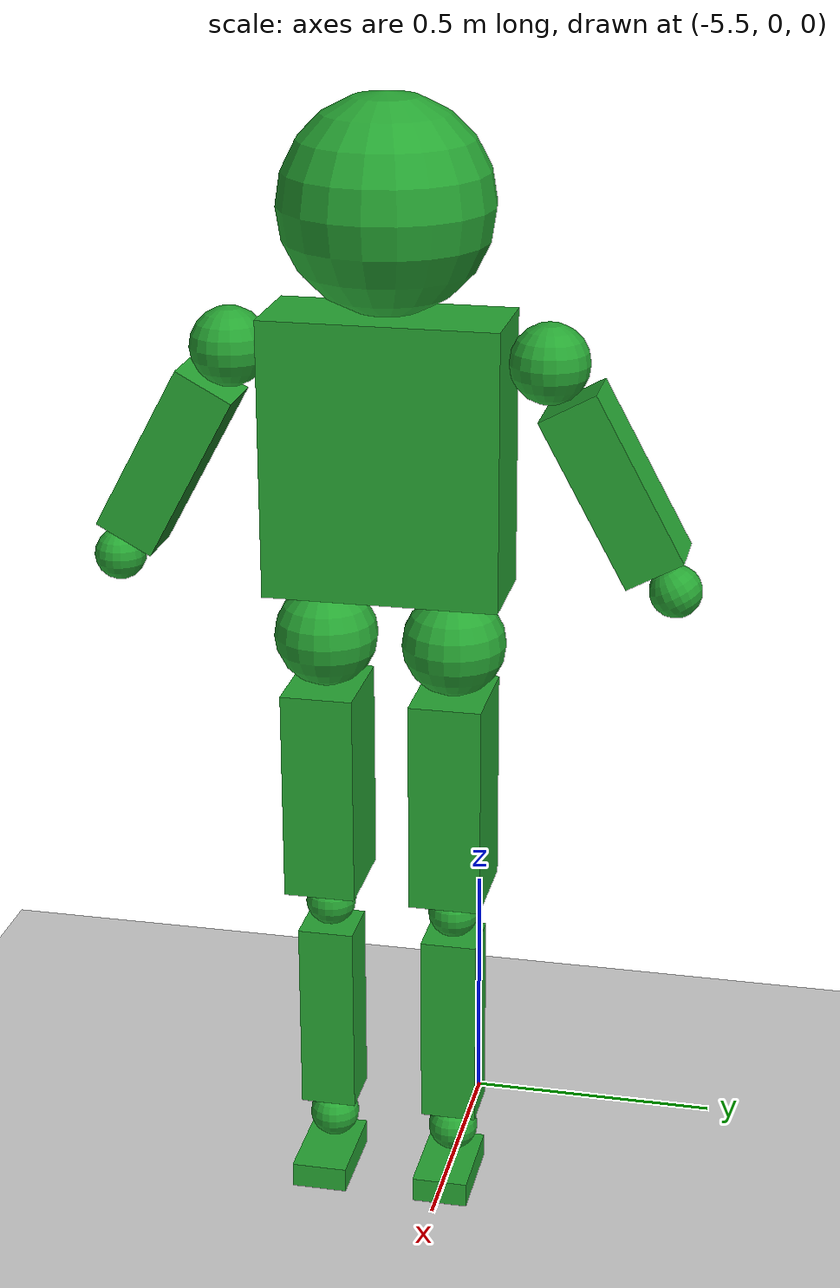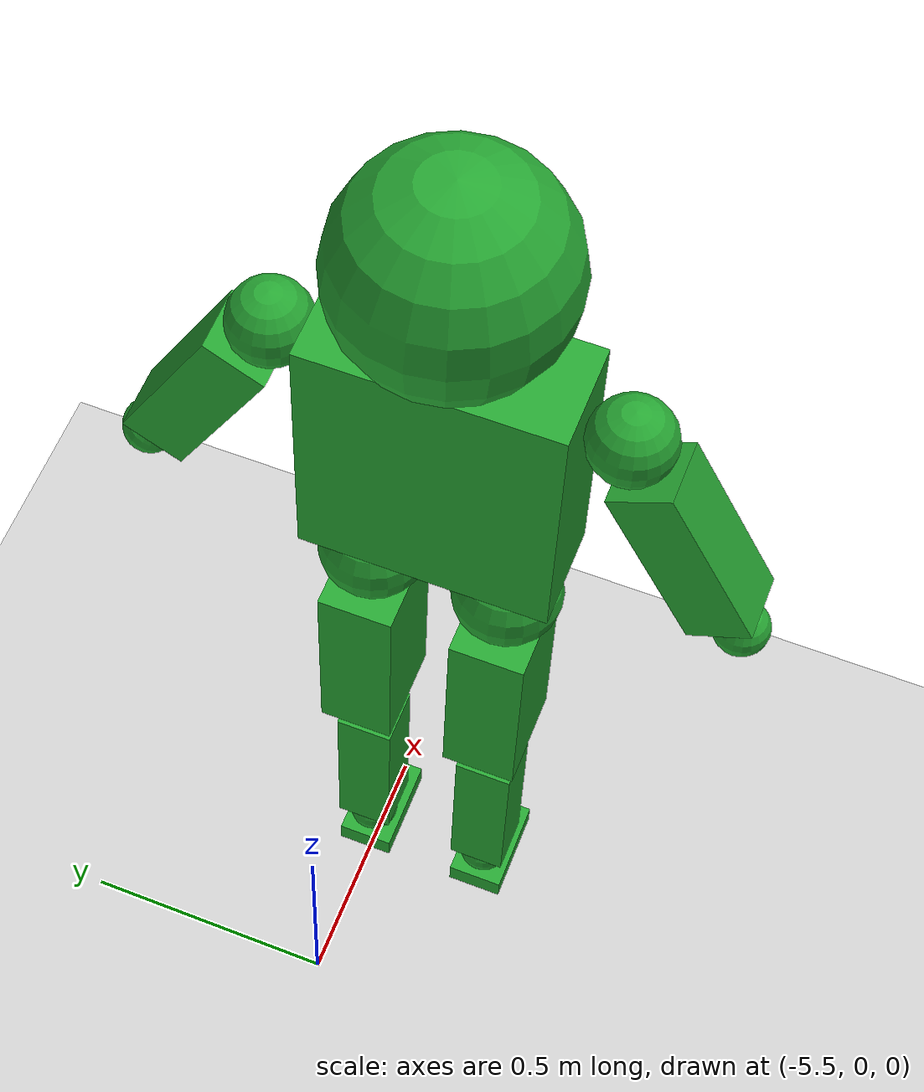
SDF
<sdf version="1.6">
 <world name="Apartment 1023">
  <model name="ground_plane">
   <static>1</static>
   <link name="link">
    <collision name="collision">
     <geometry><plane><normal>0 0 1</normal><size>100 100</size></plane></geometry>
     <surface><friction><ode><mu>100</mu><mu2>50</mu2></ode></friction></surface>
    </collision>
    <visual name="visual">
     <cast_shadows>0</cast_shadows>
     <geometry><plane><normal>0 0 1</normal><size>100 100</size></plane></geometry>
     <material>
      <script><uri>file://media/materials/scripts/gazebo.material</uri><name>Gazebo/Grey</name></script>
     </material>
    </visual>
   </link>
  </model>
  <model name="HumanoidRobot_0">
   <static>1</static>
   <link name="link_Foot_RT">
    <pose>0.98187 -0.173198 -0.379096 0 -0 0</pose>
    <inertial>
     <mass>1</mass>
     <inertia>
      <ixx>0.166667</ixx>
      <ixy>0</ixy>
      <ixz>0</ixz>
      <iyy>0.166667</iyy>
      <iyz>0</iyz>
      <izz>0.166667</izz>
     </inertia>
    </inertial>
    <visual name="visual">
     <geometry><box><size>0.19 0.11 0.05</size></box></geometry>
     <material>
      <lighting>1</lighting>
      <script><uri>file://media/materials/scripts/gazebo.material</uri><name>Gazebo/Green</name></script>
      <emissive>0 0 0 1</emissive>
      <shader type="vertex"><normal_map>__default__</normal_map></shader>
     </material>
    </visual>
    <collision name="collision">
     <geometry><box><size>0.19 0.11 0.05</size></box></geometry>
     <surface>
      <friction>
       <ode><mu>1</mu><mu2>1</mu2><fdir1>0 0 0</fdir1><slip1>0</slip1><slip2>0</slip2></ode>
       <torsional>
        <coefficient>1</coefficient>
        <patch_radius>0</patch_radius>
        <surface_radius>0</surface_radius>
        <use_patch_radius>1</use_patch_radius>
        <ode><slip>0</slip></ode>
       </torsional>
      </friction>
      <bounce><restitution_coefficient>0</restitution_coefficient><threshold>1e+06</threshold></bounce>
      <contact>
       <collide_without_contact>0</collide_without_contact>
       <collide_without_contact_bitmask>1</collide_without_contact_bitmask>
       <collide_bitmask>1</collide_bitmask>
       <ode>
        <soft_cfm>0</soft_cfm>
        <soft_erp>0.2</soft_erp>
        <kp>1e+13</kp>
        <kd>1</kd>
        <max_vel>0.01</max_vel>
        <min_depth>0</min_depth>
       </ode>
       <bullet>
        <split_impulse>1</split_impulse>
        <split_impulse_penetration_threshold>-0.01</split_impulse_penetration_threshold>
        <soft_cfm>0</soft_cfm>
        <soft_erp>0.2</soft_erp>
        <kp>1e+13</kp>
        <kd>1</kd>
       </bullet>
      </contact>
     </surface>
    </collision>
   </link>
   <link name="link_Ankle_RT">
    <pose>0.93687 -0.173198 -0.304096 0 -0 0</pose>
    <inertial>
     <mass>1</mass>
     <inertia><ixx>0.1</ixx><ixy>0</ixy><ixz>0</ixz><iyy>0.1</iyy><iyz>0</iyz><izz>0.1</izz></inertia>
    </inertial>
    <visual name="visual">
     <geometry><sphere><radius>0.05</radius></sphere></geometry>
     <material>
      <lighting>1</lighting>
      <script><uri>file://media/materials/scripts/gazebo.material</uri><name>Gazebo/Green</name></script>
      <emissive>0 0 0 1</emissive>
      <shader type="vertex"><normal_map>__default__</normal_map></shader>
     </material>
    </visual>
    <collision name="collision">
     <geometry><sphere><radius>0.05</radius></sphere></geometry>
     <surface>
      <friction>
       <ode><mu>1</mu><mu2>1</mu2><fdir1>0 0 0</fdir1><slip1>0</slip1><slip2>0</slip2></ode>
       <torsional>
        <coefficient>1</coefficient>
        <patch_radius>0</patch_radius>
        <surface_radius>0</surface_radius>
        <use_patch_radius>1</use_patch_radius>
        <ode><slip>0</slip></ode>
       </torsional>
      </friction>
      <bounce><restitution_coefficient>0</restitution_coefficient><threshold>1e+06</threshold></bounce>
      <contact>
       <collide_without_contact>0</collide_without_contact>
       <collide_without_contact_bitmask>1</collide_without_contact_bitmask>
       <collide_bitmask>1</collide_bitmask>
       <ode>
        <soft_cfm>0</soft_cfm>
        <soft_erp>0.2</soft_erp>
        <kp>1e+13</kp>
        <kd>1</kd>
        <max_vel>0.01</max_vel>
        <min_depth>0</min_depth>
       </ode>
       <bullet>
        <split_impulse>1</split_impulse>
        <split_impulse_penetration_threshold>-0.01</split_impulse_penetration_threshold>
        <soft_cfm>0</soft_cfm>
        <soft_erp>0.2</soft_erp>
        <kp>1e+13</kp>
        <kd>1</kd>
       </bullet>
      </contact>
     </surface>
    </collision>
   </link>
   <link name="link_Ankle_LT">
    <pose>0.939823 0.076802 -0.3041 0 -0 0</pose>
    <inertial>
     <mass>1</mass>
     <inertia><ixx>0.1</ixx><ixy>0</ixy><ixz>0</ixz><iyy>0.1</iyy><iyz>0</iyz><izz>0.1</izz></inertia>
    </inertial>
    <visual name="visual">
     <geometry><sphere><radius>0.05</radius></sphere></geometry>
     <material>
      <lighting>1</lighting>
      <script><uri>file://media/materials/scripts/gazebo.material</uri><name>Gazebo/Green</name></script>
      <emissive>0 0 0 1</emissive>
      <shader type="vertex"><normal_map>__default__</normal_map></shader>
     </material>
    </visual>
    <collision name="collision">
     <geometry><sphere><radius>0.05</radius></sphere></geometry>
     <surface>
      <friction>
       <ode><mu>1</mu><mu2>1</mu2><fdir1>0 0 0</fdir1><slip1>0</slip1><slip2>0</slip2></ode>
       <torsional>
        <coefficient>1</coefficient>
        <patch_radius>0</patch_radius>
        <surface_radius>0</surface_radius>
        <use_patch_radius>1</use_patch_radius>
        <ode><slip>0</slip></ode>
       </torsional>
      </friction>
      <bounce><restitution_coefficient>0</restitution_coefficient><threshold>1e+06</threshold></bounce>
      <contact>
       <collide_without_contact>0</collide_without_contact>
       <collide_without_contact_bitmask>1</collide_without_contact_bitmask>
       <collide_bitmask>1</collide_bitmask>
       <ode>
        <soft_cfm>0</soft_cfm>
        <soft_erp>0.2</soft_erp>
        <kp>1e+13</kp>
        <kd>1</kd>
        <max_vel>0.01</max_vel>
        <min_depth>0</min_depth>
       </ode>
       <bullet>
        <split_impulse>1</split_impulse>
        <split_impulse_penetration_threshold>-0.01</split_impulse_penetration_threshold>
        <soft_cfm>0</soft_cfm>
        <soft_erp>0.2</soft_erp>
        <kp>1e+13</kp>
        <kd>1</kd>
       </bullet>
      </contact>
     </surface>
    </collision>
   </link>
   <link name="link_Arm_RT">
    <pose>0.93687 -0.468195 1.0909 -0.5 0 0</pose>
    <inertial>
     <mass>1</mass>
     <inertia>
      <ixx>0.166667</ixx>
      <ixy>0</ixy>
      <ixz>0</ixz>
      <iyy>0.166667</iyy>
      <iyz>0</iyz>
      <izz>0.166667</izz>
     </inertia>
    </inertial>
    <visual name="visual">
     <geometry><box><size>0.12 0.12 0.35</size></box></geometry>
     <material>
      <lighting>1</lighting>
      <script><uri>file://media/materials/scripts/gazebo.material</uri><name>Gazebo/Green</name></script>
      <emissive>0 0 0 1</emissive>
      <shader type="vertex"><normal_map>__default__</normal_map></shader>
     </material>
    </visual>
    <collision name="collision">
     <geometry><box><size>0.12 0.12 0.35</size></box></geometry>
     <surface>
      <friction>
       <ode><mu>1</mu><mu2>1</mu2><fdir1>0 0 0</fdir1><slip1>0</slip1><slip2>0</slip2></ode>
       <torsional>
        <coefficient>1</coefficient>
        <patch_radius>0</patch_radius>
        <surface_radius>0</surface_radius>
        <use_patch_radius>1</use_patch_radius>
        <ode><slip>0</slip></ode>
       </torsional>
      </friction>
      <bounce><restitution_coefficient>0</restitution_coefficient><threshold>1e+06</threshold></bounce>
      <contact>
       <collide_without_contact>0</collide_without_contact>
       <collide_without_contact_bitmask>1</collide_without_contact_bitmask>
       <collide_bitmask>1</collide_bitmask>
       <ode>
        <soft_cfm>0</soft_cfm>
        <soft_erp>0.2</soft_erp>
        <kp>1e+13</kp>
        <kd>1</kd>
        <max_vel>0.01</max_vel>
        <min_depth>0</min_depth>
       </ode>
       <bullet>
        <split_impulse>1</split_impulse>
        <split_impulse_penetration_threshold>-0.01</split_impulse_penetration_threshold>
        <soft_cfm>0</soft_cfm>
        <soft_erp>0.2</soft_erp>
        <kp>1e+13</kp>
        <kd>1</kd>
       </bullet>
      </contact>
     </surface>
    </collision>
   </link>
   <link name="link_Arm_LT">
    <pose>0.939823 0.376802 1.0909 0.5 -0 0</pose>
    <inertial>
     <mass>1</mass>
     <inertia>
      <ixx>0.166667</ixx>
      <ixy>0</ixy>
      <ixz>0</ixz>
      <iyy>0.166667</iyy>
      <iyz>0</iyz>
      <izz>0.166667</izz>
     </inertia>
    </inertial>
    <visual name="visual">
     <geometry><box><size>0.12 0.12 0.35</size></box></geometry>
     <material>
      <lighting>1</lighting>
      <script><uri>file://media/materials/scripts/gazebo.material</uri><name>Gazebo/Green</name></script>
      <emissive>0 0 0 1</emissive>
      <shader type="vertex"><normal_map>__default__</normal_map></shader>
     </material>
    </visual>
    <collision name="collision">
     <geometry><box><size>0.12 0.12 0.35</size></box></geometry>
     <surface>
      <friction>
       <ode><mu>1</mu><mu2>1</mu2><fdir1>0 0 0</fdir1><slip1>0</slip1><slip2>0</slip2></ode>
       <torsional>
        <coefficient>1</coefficient>
        <patch_radius>0</patch_radius>
        <surface_radius>0</surface_radius>
        <use_patch_radius>1</use_patch_radius>
        <ode><slip>0</slip></ode>
       </torsional>
      </friction>
      <bounce><restitution_coefficient>0</restitution_coefficient><threshold>1e+06</threshold></bounce>
      <contact>
       <collide_without_contact>0</collide_without_contact>
       <collide_without_contact_bitmask>1</collide_without_contact_bitmask>
       <collide_bitmask>1</collide_bitmask>
       <ode>
        <soft_cfm>0</soft_cfm>
        <soft_erp>0.2</soft_erp>
        <kp>1e+13</kp>
        <kd>1</kd>
        <max_vel>0.01</max_vel>
        <min_depth>0</min_depth>
       </ode>
       <bullet>
        <split_impulse>1</split_impulse>
        <split_impulse_penetration_threshold>-0.01</split_impulse_penetration_threshold>
        <soft_cfm>0</soft_cfm>
        <soft_erp>0.2</soft_erp>
        <kp>1e+13</kp>
        <kd>1</kd>
       </bullet>
      </contact>
     </surface>
    </collision>
   </link>
   <link name="link_Calf_RT">
    <pose>0.93687 -0.173198 -0.059096 0 -0 0</pose>
    <inertial>
     <mass>1</mass>
     <inertia>
      <ixx>0.166667</ixx>
      <ixy>0</ixy>
      <ixz>0</ixz>
      <iyy>0.166667</iyy>
      <iyz>0</iyz>
      <izz>0.166667</izz>
     </inertia>
    </inertial>
    <visual name="visual">
     <geometry><box><size>0.11 0.11 0.39</size></box></geometry>
     <material>
      <lighting>1</lighting>
      <script><uri>file://media/materials/scripts/gazebo.material</uri><name>Gazebo/Green</name></script>
      <emissive>0 0 0 1</emissive>
      <shader type="vertex"><normal_map>__default__</normal_map></shader>
     </material>
    </visual>
    <collision name="collision">
     <geometry><box><size>0.11 0.11 0.39</size></box></geometry>
     <surface>
      <friction>
       <ode><mu>1</mu><mu2>1</mu2><fdir1>0 0 0</fdir1><slip1>0</slip1><slip2>0</slip2></ode>
       <torsional>
        <coefficient>1</coefficient>
        <patch_radius>0</patch_radius>
        <surface_radius>0</surface_radius>
        <use_patch_radius>1</use_patch_radius>
        <ode><slip>0</slip></ode>
       </torsional>
      </friction>
      <bounce><restitution_coefficient>0</restitution_coefficient><threshold>1e+06</threshold></bounce>
      <contact>
       <collide_without_contact>0</collide_without_contact>
       <collide_without_contact_bitmask>1</collide_without_contact_bitmask>
       <collide_bitmask>1</collide_bitmask>
       <ode>
        <soft_cfm>0</soft_cfm>
        <soft_erp>0.2</soft_erp>
        <kp>1e+13</kp>
        <kd>1</kd>
        <max_vel>0.01</max_vel>
        <min_depth>0</min_depth>
       </ode>
       <bullet>
        <split_impulse>1</split_impulse>
        <split_impulse_penetration_threshold>-0.01</split_impulse_penetration_threshold>
        <soft_cfm>0</soft_cfm>
        <soft_erp>0.2</soft_erp>
        <kp>1e+13</kp>
        <kd>1</kd>
       </bullet>
      </contact>
     </surface>
    </collision>
   </link>
   <link name="link_Calf_LT">
    <pose>0.939823 0.076802 -0.0591 0 -0 0</pose>
    <inertial>
     <mass>1</mass>
     <inertia>
      <ixx>0.166667</ixx>
      <ixy>0</ixy>
      <ixz>0</ixz>
      <iyy>0.166667</iyy>
      <iyz>0</iyz>
      <izz>0.166667</izz>
     </inertia>
    </inertial>
    <visual name="visual">
     <geometry><box><size>0.11 0.11 0.39</size></box></geometry>
     <material>
      <lighting>1</lighting>
      <script><uri>file://media/materials/scripts/gazebo.material</uri><name>Gazebo/Green</name></script>
      <emissive>0 0 0 1</emissive>
      <shader type="vertex"><normal_map>__default__</normal_map></shader>
     </material>
    </visual>
    <collision name="collision">
     <geometry><box><size>0.11 0.11 0.39</size></box></geometry>
     <surface>
      <friction>
       <ode><mu>1</mu><mu2>1</mu2><fdir1>0 0 0</fdir1><slip1>0</slip1><slip2>0</slip2></ode>
       <torsional>
        <coefficient>1</coefficient>
        <patch_radius>0</patch_radius>
        <surface_radius>0</surface_radius>
        <use_patch_radius>1</use_patch_radius>
        <ode><slip>0</slip></ode>
       </torsional>
      </friction>
      <bounce><restitution_coefficient>0</restitution_coefficient><threshold>1e+06</threshold></bounce>
      <contact>
       <collide_without_contact>0</collide_without_contact>
       <collide_without_contact_bitmask>1</collide_without_contact_bitmask>
       <collide_bitmask>1</collide_bitmask>
       <ode>
        <soft_cfm>0</soft_cfm>
        <soft_erp>0.2</soft_erp>
        <kp>1e+13</kp>
        <kd>1</kd>
        <max_vel>0.01</max_vel>
        <min_depth>0</min_depth>
       </ode>
       <bullet>
        <split_impulse>1</split_impulse>
        <split_impulse_penetration_threshold>-0.01</split_impulse_penetration_threshold>
        <soft_cfm>0</soft_cfm>
        <soft_erp>0.2</soft_erp>
        <kp>1e+13</kp>
        <kd>1</kd>
       </bullet>
      </contact>
     </surface>
    </collision>
   </link>
   <link name="link_Foot_LT">
    <pose>0.984823 0.076802 -0.3791 0 -0 0</pose>
    <inertial>
     <mass>1</mass>
     <inertia>
      <ixx>0.166667</ixx>
      <ixy>0</ixy>
      <ixz>0</ixz>
      <iyy>0.166667</iyy>
      <iyz>0</iyz>
      <izz>0.166667</izz>
     </inertia>
    </inertial>
    <visual name="visual">
     <geometry><box><size>0.19 0.11 0.05</size></box></geometry>
     <material>
      <lighting>1</lighting>
      <script><uri>file://media/materials/scripts/gazebo.material</uri><name>Gazebo/Green</name></script>
      <emissive>0 0 0 1</emissive>
      <shader type="vertex"><normal_map>__default__</normal_map></shader>
     </material>
    </visual>
    <collision name="collision">
     <geometry><box><size>0.19 0.11 0.05</size></box></geometry>
     <surface>
      <friction>
       <ode><mu>1</mu><mu2>1</mu2><fdir1>0 0 0</fdir1><slip1>0</slip1><slip2>0</slip2></ode>
       <torsional>
        <coefficient>1</coefficient>
        <patch_radius>0</patch_radius>
        <surface_radius>0</surface_radius>
        <use_patch_radius>1</use_patch_radius>
        <ode><slip>0</slip></ode>
       </torsional>
      </friction>
      <bounce><restitution_coefficient>0</restitution_coefficient><threshold>1e+06</threshold></bounce>
      <contact>
       <collide_without_contact>0</collide_without_contact>
       <collide_without_contact_bitmask>1</collide_without_contact_bitmask>
       <collide_bitmask>1</collide_bitmask>
       <ode>
        <soft_cfm>0</soft_cfm>
        <soft_erp>0.2</soft_erp>
        <kp>1e+13</kp>
        <kd>1</kd>
        <max_vel>0.01</max_vel>
        <min_depth>0</min_depth>
       </ode>
       <bullet>
        <split_impulse>1</split_impulse>
        <split_impulse_penetration_threshold>-0.01</split_impulse_penetration_threshold>
        <soft_cfm>0</soft_cfm>
        <soft_erp>0.2</soft_erp>
        <kp>1e+13</kp>
        <kd>1</kd>
       </bullet>
      </contact>
     </surface>
    </collision>
   </link>
   <link name="link_Head">
    <pose>0.93687 -0.048198 1.5859 0 -0 0</pose>
    <inertial>
     <mass>1</mass>
     <inertia><ixx>0.1</ixx><ixy>0</ixy><ixz>0</ixz><iyy>0.1</iyy><iyz>0</iyz><izz>0.1</izz></inertia>
    </inertial>
    <visual name="visual">
     <geometry><sphere><radius>0.2</radius></sphere></geometry>
     <material>
      <lighting>1</lighting>
      <script><uri>file://media/materials/scripts/gazebo.material</uri><name>Gazebo/Green</name></script>
      <emissive>0 0 0 1</emissive>
      <shader type="vertex"><normal_map>__default__</normal_map></shader>
     </material>
    </visual>
    <collision name="collision">
     <geometry><sphere><radius>0.2</radius></sphere></geometry>
     <surface>
      <friction>
       <ode><mu>1</mu><mu2>1</mu2><fdir1>0 0 0</fdir1><slip1>0</slip1><slip2>0</slip2></ode>
       <torsional>
        <coefficient>1</coefficient>
        <patch_radius>0</patch_radius>
        <surface_radius>0</surface_radius>
        <use_patch_radius>1</use_patch_radius>
        <ode><slip>0</slip></ode>
       </torsional>
      </friction>
      <bounce><restitution_coefficient>0</restitution_coefficient><threshold>1e+06</threshold></bounce>
      <contact>
       <collide_without_contact>0</collide_without_contact>
       <collide_without_contact_bitmask>1</collide_without_contact_bitmask>
       <collide_bitmask>1</collide_bitmask>
       <ode>
        <soft_cfm>0</soft_cfm>
        <soft_erp>0.2</soft_erp>
        <kp>1e+13</kp>
        <kd>1</kd>
        <max_vel>0.01</max_vel>
        <min_depth>0</min_depth>
       </ode>
       <bullet>
        <split_impulse>1</split_impulse>
        <split_impulse_penetration_threshold>-0.01</split_impulse_penetration_threshold>
        <soft_cfm>0</soft_cfm>
        <soft_erp>0.2</soft_erp>
        <kp>1e+13</kp>
        <kd>1</kd>
       </bullet>
      </contact>
     </surface>
    </collision>
   </link>
   <link name="link_Hip_RT">
    <pose>0.93687 -0.173198 0.7559 0 -0 0</pose>
    <inertial>
     <mass>1</mass>
     <inertia><ixx>0.1</ixx><ixy>0</ixy><ixz>0</ixz><iyy>0.1</iyy><iyz>0</iyz><izz>0.1</izz></inertia>
    </inertial>
    <visual name="visual">
     <geometry><sphere><radius>0.1</radius></sphere></geometry>
     <material>
      <lighting>1</lighting>
      <script><uri>file://media/materials/scripts/gazebo.material</uri><name>Gazebo/Green</name></script>
      <emissive>0 0 0 1</emissive>
      <shader type="vertex"><normal_map>__default__</normal_map></shader>
     </material>
    </visual>
    <collision name="collision">
     <geometry><sphere><radius>0.1</radius></sphere></geometry>
     <surface>
      <friction>
       <ode><mu>1</mu><mu2>1</mu2><fdir1>0 0 0</fdir1><slip1>0</slip1><slip2>0</slip2></ode>
       <torsional>
        <coefficient>1</coefficient>
        <patch_radius>0</patch_radius>
        <surface_radius>0</surface_radius>
        <use_patch_radius>1</use_patch_radius>
        <ode><slip>0</slip></ode>
       </torsional>
      </friction>
      <bounce><restitution_coefficient>0</restitution_coefficient><threshold>1e+06</threshold></bounce>
      <contact>
       <collide_without_contact>0</collide_without_contact>
       <collide_without_contact_bitmask>1</collide_without_contact_bitmask>
       <collide_bitmask>1</collide_bitmask>
       <ode>
        <soft_cfm>0</soft_cfm>
        <soft_erp>0.2</soft_erp>
        <kp>1e+13</kp>
        <kd>1</kd>
        <max_vel>0.01</max_vel>
        <min_depth>0</min_depth>
       </ode>
       <bullet>
        <split_impulse>1</split_impulse>
        <split_impulse_penetration_threshold>-0.01</split_impulse_penetration_threshold>
        <soft_cfm>0</soft_cfm>
        <soft_erp>0.2</soft_erp>
        <kp>1e+13</kp>
        <kd>1</kd>
       </bullet>
      </contact>
     </surface>
    </collision>
   </link>
   <link name="link_Hip_LT">
    <pose>0.939823 0.076802 0.7559 0 -0 0</pose>
    <inertial>
     <mass>1</mass>
     <inertia><ixx>0.1</ixx><ixy>0</ixy><ixz>0</ixz><iyy>0.1</iyy><iyz>0</iyz><izz>0.1</izz></inertia>
    </inertial>
    <visual name="visual">
     <geometry><sphere><radius>0.1</radius></sphere></geometry>
     <material>
      <lighting>1</lighting>
      <script><uri>file://media/materials/scripts/gazebo.material</uri><name>Gazebo/Green</name></script>
      <emissive>0 0 0 1</emissive>
      <shader type="vertex"><normal_map>__default__</normal_map></shader>
     </material>
    </visual>
    <collision name="collision">
     <geometry><sphere><radius>0.1</radius></sphere></geometry>
     <surface>
      <friction>
       <ode><mu>1</mu><mu2>1</mu2><fdir1>0 0 0</fdir1><slip1>0</slip1><slip2>0</slip2></ode>
       <torsional>
        <coefficient>1</coefficient>
        <patch_radius>0</patch_radius>
        <surface_radius>0</surface_radius>
        <use_patch_radius>1</use_patch_radius>
        <ode><slip>0</slip></ode>
       </torsional>
      </friction>
      <bounce><restitution_coefficient>0</restitution_coefficient><threshold>1e+06</threshold></bounce>
      <contact>
       <collide_without_contact>0</collide_without_contact>
       <collide_without_contact_bitmask>1</collide_without_contact_bitmask>
       <collide_bitmask>1</collide_bitmask>
       <ode>
        <soft_cfm>0</soft_cfm>
        <soft_erp>0.2</soft_erp>
        <kp>1e+13</kp>
        <kd>1</kd>
        <max_vel>0.01</max_vel>
        <min_depth>0</min_depth>
       </ode>
       <bullet>
        <split_impulse>1</split_impulse>
        <split_impulse_penetration_threshold>-0.01</split_impulse_penetration_threshold>
        <soft_cfm>0</soft_cfm>
        <soft_erp>0.2</soft_erp>
        <kp>1e+13</kp>
        <kd>1</kd>
       </bullet>
      </contact>
     </surface>
    </collision>
   </link>
   <link name="link_Knee_RT">
    <pose>0.93687 -0.173198 0.185904 0 -0 0</pose>
    <inertial>
     <mass>1</mass>
     <inertia><ixx>0.1</ixx><ixy>0</ixy><ixz>0</ixz><iyy>0.1</iyy><iyz>0</iyz><izz>0.1</izz></inertia>
    </inertial>
    <visual name="visual">
     <geometry><sphere><radius>0.05</radius></sphere></geometry>
     <material>
      <lighting>1</lighting>
      <script><uri>file://media/materials/scripts/gazebo.material</uri><name>Gazebo/Green</name></script>
      <emissive>0 0 0 1</emissive>
      <shader type="vertex"><normal_map>__default__</normal_map></shader>
     </material>
    </visual>
    <collision name="collision">
     <geometry><sphere><radius>0.05</radius></sphere></geometry>
     <surface>
      <friction>
       <ode><mu>1</mu><mu2>1</mu2><fdir1>0 0 0</fdir1><slip1>0</slip1><slip2>0</slip2></ode>
       <torsional>
        <coefficient>1</coefficient>
        <patch_radius>0</patch_radius>
        <surface_radius>0</surface_radius>
        <use_patch_radius>1</use_patch_radius>
        <ode><slip>0</slip></ode>
       </torsional>
      </friction>
      <bounce><restitution_coefficient>0</restitution_coefficient><threshold>1e+06</threshold></bounce>
      <contact>
       <collide_without_contact>0</collide_without_contact>
       <collide_without_contact_bitmask>1</collide_without_contact_bitmask>
       <collide_bitmask>1</collide_bitmask>
       <ode>
        <soft_cfm>0</soft_cfm>
        <soft_erp>0.2</soft_erp>
        <kp>1e+13</kp>
        <kd>1</kd>
        <max_vel>0.01</max_vel>
        <min_depth>0</min_depth>
       </ode>
       <bullet>
        <split_impulse>1</split_impulse>
        <split_impulse_penetration_threshold>-0.01</split_impulse_penetration_threshold>
        <soft_cfm>0</soft_cfm>
        <soft_erp>0.2</soft_erp>
        <kp>1e+13</kp>
        <kd>1</kd>
       </bullet>
      </contact>
     </surface>
    </collision>
   </link>
   <link name="link_Knee_LT">
    <pose>0.939823 0.076802 0.1859 0 -0 0</pose>
    <inertial>
     <mass>1</mass>
     <inertia><ixx>0.1</ixx><ixy>0</ixy><ixz>0</ixz><iyy>0.1</iyy><iyz>0</iyz><izz>0.1</izz></inertia>
    </inertial>
    <visual name="visual">
     <geometry><sphere><radius>0.05</radius></sphere></geometry>
     <material>
      <lighting>1</lighting>
      <script><uri>file://media/materials/scripts/gazebo.material</uri><name>Gazebo/Green</name></script>
      <emissive>0 0 0 1</emissive>
      <shader type="vertex"><normal_map>__default__</normal_map></shader>
     </material>
    </visual>
    <collision name="collision">
     <geometry><sphere><radius>0.05</radius></sphere></geometry>
     <surface>
      <friction>
       <ode><mu>1</mu><mu2>1</mu2><fdir1>0 0 0</fdir1><slip1>0</slip1><slip2>0</slip2></ode>
       <torsional>
        <coefficient>1</coefficient>
        <patch_radius>0</patch_radius>
        <surface_radius>0</surface_radius>
        <use_patch_radius>1</use_patch_radius>
        <ode><slip>0</slip></ode>
       </torsional>
      </friction>
      <bounce><restitution_coefficient>0</restitution_coefficient><threshold>1e+06</threshold></bounce>
      <contact>
       <collide_without_contact>0</collide_without_contact>
       <collide_without_contact_bitmask>1</collide_without_contact_bitmask>
       <collide_bitmask>1</collide_bitmask>
       <ode>
        <soft_cfm>0</soft_cfm>
        <soft_erp>0.2</soft_erp>
        <kp>1e+13</kp>
        <kd>1</kd>
        <max_vel>0.01</max_vel>
        <min_depth>0</min_depth>
       </ode>
       <bullet>
        <split_impulse>1</split_impulse>
        <split_impulse_penetration_threshold>-0.01</split_impulse_penetration_threshold>
        <soft_cfm>0</soft_cfm>
        <soft_erp>0.2</soft_erp>
        <kp>1e+13</kp>
        <kd>1</kd>
       </bullet>
      </contact>
     </surface>
    </collision>
   </link>
   <link name="link_Shoulder_RT">
    <pose>0.93687 -0.348198 1.3109 0 -0 0</pose>
    <inertial>
     <mass>1</mass>
     <inertia><ixx>0.1</ixx><ixy>0</ixy><ixz>0</ixz><iyy>0.1</iyy><iyz>0</iyz><izz>0.1</izz></inertia>
    </inertial>
    <visual name="visual">
     <geometry><sphere><radius>0.075</radius></sphere></geometry>
     <material>
      <lighting>1</lighting>
      <script><uri>file://media/materials/scripts/gazebo.material</uri><name>Gazebo/Green</name></script>
      <emissive>0 0 0 1</emissive>
      <shader type="vertex"><normal_map>__default__</normal_map></shader>
     </material>
    </visual>
    <collision name="collision">
     <geometry><sphere><radius>0.075</radius></sphere></geometry>
     <surface>
      <friction>
       <ode><mu>1</mu><mu2>1</mu2><fdir1>0 0 0</fdir1><slip1>0</slip1><slip2>0</slip2></ode>
       <torsional>
        <coefficient>1</coefficient>
        <patch_radius>0</patch_radius>
        <surface_radius>0</surface_radius>
        <use_patch_radius>1</use_patch_radius>
        <ode><slip>0</slip></ode>
       </torsional>
      </friction>
      <bounce><restitution_coefficient>0</restitution_coefficient><threshold>1e+06</threshold></bounce>
      <contact>
       <collide_without_contact>0</collide_without_contact>
       <collide_without_contact_bitmask>1</collide_without_contact_bitmask>
       <collide_bitmask>1</collide_bitmask>
       <ode>
        <soft_cfm>0</soft_cfm>
        <soft_erp>0.2</soft_erp>
        <kp>1e+13</kp>
        <kd>1</kd>
        <max_vel>0.01</max_vel>
        <min_depth>0</min_depth>
       </ode>
       <bullet>
        <split_impulse>1</split_impulse>
        <split_impulse_penetration_threshold>-0.01</split_impulse_penetration_threshold>
        <soft_cfm>0</soft_cfm>
        <soft_erp>0.2</soft_erp>
        <kp>1e+13</kp>
        <kd>1</kd>
       </bullet>
      </contact>
     </surface>
    </collision>
   </link>
   <link name="link_Shoulder_LT">
    <pose>0.939823 0.251802 1.3109 0 -0 0</pose>
    <inertial>
     <mass>1</mass>
     <inertia><ixx>0.1</ixx><ixy>0</ixy><ixz>0</ixz><iyy>0.1</iyy><iyz>0</iyz><izz>0.1</izz></inertia>
    </inertial>
    <visual name="visual">
     <geometry><sphere><radius>0.075</radius></sphere></geometry>
     <material>
      <lighting>1</lighting>
      <script><uri>file://media/materials/scripts/gazebo.material</uri><name>Gazebo/Green</name></script>
      <emissive>0 0 0 1</emissive>
      <shader type="vertex"><normal_map>__default__</normal_map></shader>
     </material>
    </visual>
    <collision name="collision">
     <geometry><sphere><radius>0.075</radius></sphere></geometry>
     <surface>
      <friction>
       <ode><mu>1</mu><mu2>1</mu2><fdir1>0 0 0</fdir1><slip1>0</slip1><slip2>0</slip2></ode>
       <torsional>
        <coefficient>1</coefficient>
        <patch_radius>0</patch_radius>
        <surface_radius>0</surface_radius>
        <use_patch_radius>1</use_patch_radius>
        <ode><slip>0</slip></ode>
       </torsional>
      </friction>
      <bounce><restitution_coefficient>0</restitution_coefficient><threshold>1e+06</threshold></bounce>
      <contact>
       <collide_without_contact>0</collide_without_contact>
       <collide_without_contact_bitmask>1</collide_without_contact_bitmask>
       <collide_bitmask>1</collide_bitmask>
       <ode>
        <soft_cfm>0</soft_cfm>
        <soft_erp>0.2</soft_erp>
        <kp>1e+13</kp>
        <kd>1</kd>
        <max_vel>0.01</max_vel>
        <min_depth>0</min_depth>
       </ode>
       <bullet>
        <split_impulse>1</split_impulse>
        <split_impulse_penetration_threshold>-0.01</split_impulse_penetration_threshold>
        <soft_cfm>0</soft_cfm>
        <soft_erp>0.2</soft_erp>
        <kp>1e+13</kp>
        <kd>1</kd>
       </bullet>
      </contact>
     </surface>
    </collision>
   </link>
   <link name="link_Thigh_RT">
    <pose>0.93687 -0.173198 0.445904 0 -0 0</pose>
    <inertial>
     <mass>1</mass>
     <inertia>
      <ixx>0.166667</ixx>
      <ixy>0</ixy>
      <ixz>0</ixz>
      <iyy>0.166667</iyy>
      <iyz>0</iyz>
      <izz>0.166667</izz>
     </inertia>
    </inertial>
    <visual name="visual">
     <geometry><box><size>0.19 0.14 0.42</size></box></geometry>
     <material>
      <lighting>1</lighting>
      <script><uri>file://media/materials/scripts/gazebo.material</uri><name>Gazebo/Green</name></script>
      <emissive>0 0 0 1</emissive>
      <shader type="vertex"><normal_map>__default__</normal_map></shader>
     </material>
    </visual>
    <collision name="collision">
     <geometry><box><size>0.19 0.14 0.42</size></box></geometry>
     <surface>
      <friction>
       <ode><mu>1</mu><mu2>1</mu2><fdir1>0 0 0</fdir1><slip1>0</slip1><slip2>0</slip2></ode>
       <torsional>
        <coefficient>1</coefficient>
        <patch_radius>0</patch_radius>
        <surface_radius>0</surface_radius>
        <use_patch_radius>1</use_patch_radius>
        <ode><slip>0</slip></ode>
       </torsional>
      </friction>
      <bounce><restitution_coefficient>0</restitution_coefficient><threshold>1e+06</threshold></bounce>
      <contact>
       <collide_without_contact>0</collide_without_contact>
       <collide_without_contact_bitmask>1</collide_without_contact_bitmask>
       <collide_bitmask>1</collide_bitmask>
       <ode>
        <soft_cfm>0</soft_cfm>
        <soft_erp>0.2</soft_erp>
        <kp>1e+13</kp>
        <kd>1</kd>
        <max_vel>0.01</max_vel>
        <min_depth>0</min_depth>
       </ode>
       <bullet>
        <split_impulse>1</split_impulse>
        <split_impulse_penetration_threshold>-0.01</split_impulse_penetration_threshold>
        <soft_cfm>0</soft_cfm>
        <soft_erp>0.2</soft_erp>
        <kp>1e+13</kp>
        <kd>1</kd>
       </bullet>
      </contact>
     </surface>
    </collision>
   </link>
   <link name="link_Thigh_LT">
    <pose>0.939823 0.076802 0.4459 0 -0 0</pose>
    <inertial>
     <mass>1</mass>
     <inertia>
      <ixx>0.166667</ixx>
      <ixy>0</ixy>
      <ixz>0</ixz>
      <iyy>0.166667</iyy>
      <iyz>0</iyz>
      <izz>0.166667</izz>
     </inertia>
    </inertial>
    <visual name="visual">
     <geometry><box><size>0.19 0.14 0.42</size></box></geometry>
     <material>
      <lighting>1</lighting>
      <script><uri>file://media/materials/scripts/gazebo.material</uri><name>Gazebo/Green</name></script>
      <emissive>0 0 0 1</emissive>
      <shader type="vertex"><normal_map>__default__</normal_map></shader>
     </material>
    </visual>
    <collision name="collision">
     <geometry><box><size>0.19 0.14 0.42</size></box></geometry>
     <surface>
      <friction>
       <ode><mu>1</mu><mu2>1</mu2><fdir1>0 0 0</fdir1><slip1>0</slip1><slip2>0</slip2></ode>
       <torsional>
        <coefficient>1</coefficient>
        <patch_radius>0</patch_radius>
        <surface_radius>0</surface_radius>
        <use_patch_radius>1</use_patch_radius>
        <ode><slip>0</slip></ode>
       </torsional>
      </friction>
      <bounce><restitution_coefficient>0</restitution_coefficient><threshold>1e+06</threshold></bounce>
      <contact>
       <collide_without_contact>0</collide_without_contact>
       <collide_without_contact_bitmask>1</collide_without_contact_bitmask>
       <collide_bitmask>1</collide_bitmask>
       <ode>
        <soft_cfm>0</soft_cfm>
        <soft_erp>0.2</soft_erp>
        <kp>1e+13</kp>
        <kd>1</kd>
        <max_vel>0.01</max_vel>
        <min_depth>0</min_depth>
       </ode>
       <bullet>
        <split_impulse>1</split_impulse>
        <split_impulse_penetration_threshold>-0.01</split_impulse_penetration_threshold>
        <soft_cfm>0</soft_cfm>
        <soft_erp>0.2</soft_erp>
        <kp>1e+13</kp>
        <kd>1</kd>
       </bullet>
      </contact>
     </surface>
    </collision>
   </link>
   <link name="link_Torso_RT">
    <pose>0.93687 -0.048198 1.1209 0 -0 0</pose>
    <inertial>
     <mass>1</mass>
     <inertia>
      <ixx>0.166667</ixx>
      <ixy>0</ixy>
      <ixz>0</ixz>
      <iyy>0.166667</iyy>
      <iyz>0</iyz>
      <izz>0.166667</izz>
     </inertia>
    </inertial>
    <visual name="visual">
     <geometry><box><size>0.19 0.45 0.53</size></box></geometry>
     <material>
      <lighting>1</lighting>
      <script><uri>file://media/materials/scripts/gazebo.material</uri><name>Gazebo/Green</name></script>
      <emissive>0 0 0 1</emissive>
      <shader type="vertex"><normal_map>__default__</normal_map></shader>
     </material>
    </visual>
    <collision name="collision">
     <geometry><box><size>0.19 0.45 0.53</size></box></geometry>
     <surface>
      <friction>
       <ode><mu>1</mu><mu2>1</mu2><fdir1>0 0 0</fdir1><slip1>0</slip1><slip2>0</slip2></ode>
       <torsional>
        <coefficient>1</coefficient>
        <patch_radius>0</patch_radius>
        <surface_radius>0</surface_radius>
        <use_patch_radius>1</use_patch_radius>
        <ode><slip>0</slip></ode>
       </torsional>
      </friction>
      <bounce><restitution_coefficient>0</restitution_coefficient><threshold>1e+06</threshold></bounce>
      <contact>
       <collide_without_contact>0</collide_without_contact>
       <collide_without_contact_bitmask>1</collide_without_contact_bitmask>
       <collide_bitmask>1</collide_bitmask>
       <ode>
        <soft_cfm>0</soft_cfm>
        <soft_erp>0.2</soft_erp>
        <kp>1e+13</kp>
        <kd>1</kd>
        <max_vel>0.01</max_vel>
        <min_depth>0</min_depth>
       </ode>
       <bullet>
        <split_impulse>1</split_impulse>
        <split_impulse_penetration_threshold>-0.01</split_impulse_penetration_threshold>
        <soft_cfm>0</soft_cfm>
        <soft_erp>0.2</soft_erp>
        <kp>1e+13</kp>
        <kd>1</kd>
       </bullet>
      </contact>
     </surface>
    </collision>
   </link>
   <link name="link_Wrist_RT">
    <pose>0.93687 -0.578466 0.88906 0 -0 0</pose>
    <inertial>
     <mass>1</mass>
     <inertia><ixx>0.1</ixx><ixy>0</ixy><ixz>0</ixz><iyy>0.1</iyy><iyz>0</iyz><izz>0.1</izz></inertia>
    </inertial>
    <visual name="visual">
     <geometry><sphere><radius>0.05</radius></sphere></geometry>
     <material>
      <lighting>1</lighting>
      <script><uri>file://media/materials/scripts/gazebo.material</uri><name>Gazebo/Green</name></script>
      <emissive>0 0 0 1</emissive>
      <shader type="vertex"><normal_map>__default__</normal_map></shader>
     </material>
    </visual>
    <collision name="collision">
     <geometry><sphere><radius>0.05</radius></sphere></geometry>
     <surface>
      <friction>
       <ode><mu>1</mu><mu2>1</mu2><fdir1>0 0 0</fdir1><slip1>0</slip1><slip2>0</slip2></ode>
       <torsional>
        <coefficient>1</coefficient>
        <patch_radius>0</patch_radius>
        <surface_radius>0</surface_radius>
        <use_patch_radius>1</use_patch_radius>
        <ode><slip>0</slip></ode>
       </torsional>
      </friction>
      <bounce><restitution_coefficient>0</restitution_coefficient><threshold>1e+06</threshold></bounce>
      <contact>
       <collide_without_contact>0</collide_without_contact>
       <collide_without_contact_bitmask>1</collide_without_contact_bitmask>
       <collide_bitmask>1</collide_bitmask>
       <ode>
        <soft_cfm>0</soft_cfm>
        <soft_erp>0.2</soft_erp>
        <kp>1e+13</kp>
        <kd>1</kd>
        <max_vel>0.01</max_vel>
        <min_depth>0</min_depth>
       </ode>
       <bullet>
        <split_impulse>1</split_impulse>
        <split_impulse_penetration_threshold>-0.01</split_impulse_penetration_threshold>
        <soft_cfm>0</soft_cfm>
        <soft_erp>0.2</soft_erp>
        <kp>1e+13</kp>
        <kd>1</kd>
       </bullet>
      </contact>
     </surface>
    </collision>
   </link>
   <link name="link_Wrist_LT">
    <pose>0.939823 0.493652 0.892652 0.5 -0 0</pose>
    <inertial>
     <mass>1</mass>
     <inertia><ixx>0.1</ixx><ixy>0</ixy><ixz>0</ixz><iyy>0.1</iyy><iyz>0</iyz><izz>0.1</izz></inertia>
    </inertial>
    <visual name="visual">
     <geometry><sphere><radius>0.05</radius></sphere></geometry>
     <material>
      <lighting>1</lighting>
      <script><uri>file://media/materials/scripts/gazebo.material</uri><name>Gazebo/Green</name></script>
      <emissive>0 0 0 1</emissive>
      <shader type="vertex"><normal_map>__default__</normal_map></shader>
     </material>
    </visual>
    <collision name="collision">
     <geometry><sphere><radius>0.05</radius></sphere></geometry>
     <surface>
      <friction>
       <ode><mu>1</mu><mu2>1</mu2><fdir1>0 0 0</fdir1><slip1>0</slip1><slip2>0</slip2></ode>
       <torsional>
        <coefficient>1</coefficient>
        <patch_radius>0</patch_radius>
        <surface_radius>0</surface_radius>
        <use_patch_radius>1</use_patch_radius>
        <ode><slip>0</slip></ode>
       </torsional>
      </friction>
      <bounce><restitution_coefficient>0</restitution_coefficient><threshold>1e+06</threshold></bounce>
      <contact>
       <collide_without_contact>0</collide_without_contact>
       <collide_without_contact_bitmask>1</collide_without_contact_bitmask>
       <collide_bitmask>1</collide_bitmask>
       <ode>
        <soft_cfm>0</soft_cfm>
        <soft_erp>0.2</soft_erp>
        <kp>1e+13</kp>
        <kd>1</kd>
        <max_vel>0.01</max_vel>
        <min_depth>0</min_depth>
       </ode>
       <bullet>
        <split_impulse>1</split_impulse>
        <split_impulse_penetration_threshold>-0.01</split_impulse_penetration_threshold>
        <soft_cfm>0</soft_cfm>
        <soft_erp>0.2</soft_erp>
        <kp>1e+13</kp>
        <kd>1</kd>
       </bullet>
      </contact>
     </surface>
    </collision>
   </link>
   <joint name="link_Ankle_RT_JOINT_3" type="ball">
    <parent>link_Ankle_RT</parent>
    <child>link_Calf_RT</child>
    <physics>
     <ode><limit><cfm>0</cfm><erp>0.2</erp></limit><suspension><cfm>0</cfm><erp>0.2</erp></suspension></ode>
    </physics>
   </joint>
   <joint name="link_Ankle_LT_JOINT_8" type="revolute">
    <parent>link_Ankle_LT</parent>
    <child>link_Foot_LT</child>
    <axis>
     <xyz>1 0 0</xyz>
     <use_parent_model_frame>0</use_parent_model_frame>
     <limit>
      <lower>-1.79769e+308</lower>
      <upper>1.79769e+308</upper>
      <effort>-1</effort>
      <velocity>-1</velocity>
     </limit>
     <dynamics>
      <spring_reference>0</spring_reference>
      <spring_stiffness>0</spring_stiffness>
      <damping>0</damping>
     </dynamics>
    </axis>
    <physics>
     <ode><limit><cfm>0</cfm><erp>0.2</erp></limit><suspension><cfm>0</cfm><erp>0.2</erp></suspension></ode>
    </physics>
   </joint>
   <joint name="link_Arm_RT_JOINT_18" type="revolute">
    <parent>link_Arm_RT</parent>
    <child>link_Wrist_RT</child>
    <pose>0 0 0 0.5 -0 0</pose>
    <axis>
     <xyz>1 0 0</xyz>
     <use_parent_model_frame>0</use_parent_model_frame>
     <limit>
      <lower>-1.79769e+308</lower>
      <upper>1.79769e+308</upper>
      <effort>-1</effort>
      <velocity>-1</velocity>
     </limit>
     <dynamics>
      <spring_reference>0</spring_reference>
      <spring_stiffness>0</spring_stiffness>
      <damping>0</damping>
      <friction>0</friction>
     </dynamics>
    </axis>
    <physics>
     <ode><limit><cfm>0</cfm><erp>0.2</erp></limit><suspension><cfm>0</cfm><erp>0.2</erp></suspension></ode>
    </physics>
   </joint>
   <joint name="link_Arm_LT_JOINT_2" type="revolute">
    <parent>link_Arm_LT</parent>
    <child>link_Wrist_LT</child>
    <axis>
     <xyz>1 0 0</xyz>
     <use_parent_model_frame>0</use_parent_model_frame>
     <limit>
      <lower>-1.79769e+308</lower>
      <upper>1.79769e+308</upper>
      <effort>-1</effort>
      <velocity>-1</velocity>
     </limit>
     <dynamics>
      <spring_reference>0</spring_reference>
      <spring_stiffness>0</spring_stiffness>
      <damping>0</damping>
     </dynamics>
    </axis>
    <physics>
     <ode><limit><cfm>0</cfm><erp>0.2</erp></limit><suspension><cfm>0</cfm><erp>0.2</erp></suspension></ode>
    </physics>
   </joint>
   <joint name="link_Calf_RT_JOINT_4" type="ball">
    <parent>link_Calf_RT</parent>
    <child>link_Knee_RT</child>
    <physics>
     <ode><limit><cfm>0</cfm><erp>0.2</erp></limit><suspension><cfm>0</cfm><erp>0.2</erp></suspension></ode>
    </physics>
   </joint>
   <joint name="link_Calf_LT_JOINT_7" type="revolute">
    <parent>link_Calf_LT</parent>
    <child>link_Ankle_LT</child>
    <axis>
     <xyz>1 0 0</xyz>
     <use_parent_model_frame>0</use_parent_model_frame>
     <limit>
      <lower>-1.79769e+308</lower>
      <upper>1.79769e+308</upper>
      <effort>-1</effort>
      <velocity>-1</velocity>
     </limit>
     <dynamics>
      <spring_reference>0</spring_reference>
      <spring_stiffness>0</spring_stiffness>
      <damping>0</damping>
     </dynamics>
    </axis>
    <physics>
     <ode><limit><cfm>0</cfm><erp>0.2</erp></limit><suspension><cfm>0</cfm><erp>0.2</erp></suspension></ode>
    </physics>
   </joint>
   <joint name="link_Foot_RT_JOINT_2" type="ball">
    <parent>link_Foot_RT</parent>
    <child>link_Ankle_RT</child>
    <physics>
     <ode><limit><cfm>0</cfm><erp>0.2</erp></limit><suspension><cfm>0</cfm><erp>0.2</erp></suspension></ode>
    </physics>
   </joint>
   <joint name="link_Hip_RT_JOINT_13" type="ball">
    <parent>link_Hip_RT</parent>
    <child>link_Torso_RT</child>
    <physics>
     <ode><limit><cfm>0</cfm><erp>0.2</erp></limit><suspension><cfm>0</cfm><erp>0.2</erp></suspension></ode>
    </physics>
   </joint>
   <joint name="link_Hip_LT_JOINT_4" type="revolute">
    <parent>link_Hip_LT</parent>
    <child>link_Thigh_LT</child>
    <axis>
     <xyz>1 0 0</xyz>
     <use_parent_model_frame>0</use_parent_model_frame>
     <limit>
      <lower>-1.79769e+308</lower>
      <upper>1.79769e+308</upper>
      <effort>-1</effort>
      <velocity>-1</velocity>
     </limit>
     <dynamics>
      <spring_reference>0</spring_reference>
      <spring_stiffness>0</spring_stiffness>
      <damping>0</damping>
     </dynamics>
    </axis>
    <physics>
     <ode><limit><cfm>0</cfm><erp>0.2</erp></limit><suspension><cfm>0</cfm><erp>0.2</erp></suspension></ode>
    </physics>
   </joint>
   <joint name="link_Knee_RT_JOINT_6" type="ball">
    <parent>link_Knee_RT</parent>
    <child>link_Thigh_RT</child>
    <physics>
     <ode><limit><cfm>0</cfm><erp>0.2</erp></limit><suspension><cfm>0</cfm><erp>0.2</erp></suspension></ode>
    </physics>
   </joint>
   <joint name="link_Knee_LT_JOINT_6" type="revolute">
    <parent>link_Knee_LT</parent>
    <child>link_Calf_LT</child>
    <axis>
     <xyz>1 0 0</xyz>
     <use_parent_model_frame>0</use_parent_model_frame>
     <limit>
      <lower>-1.79769e+308</lower>
      <upper>1.79769e+308</upper>
      <effort>-1</effort>
      <velocity>-1</velocity>
     </limit>
     <dynamics>
      <spring_reference>0</spring_reference>
      <spring_stiffness>0</spring_stiffness>
      <damping>0</damping>
     </dynamics>
    </axis>
    <physics>
     <ode><limit><cfm>0</cfm><erp>0.2</erp></limit><suspension><cfm>0</cfm><erp>0.2</erp></suspension></ode>
    </physics>
   </joint>
   <joint name="link_Shoulder_RT_JOINT_16" type="revolute">
    <parent>link_Shoulder_RT</parent>
    <child>link_Arm_RT</child>
    <axis>
     <xyz>1 0 0</xyz>
     <use_parent_model_frame>0</use_parent_model_frame>
     <limit>
      <lower>-1.79769e+308</lower>
      <upper>1.79769e+308</upper>
      <effort>-1</effort>
      <velocity>-1</velocity>
     </limit>
     <dynamics>
      <spring_reference>0</spring_reference>
      <spring_stiffness>0</spring_stiffness>
      <damping>0</damping>
      <friction>0</friction>
     </dynamics>
    </axis>
    <physics>
     <ode><limit><cfm>0</cfm><erp>0.2</erp></limit><suspension><cfm>0</cfm><erp>0.2</erp></suspension></ode>
    </physics>
   </joint>
   <joint name="link_Shoulder_LT_JOINT_1" type="revolute">
    <parent>link_Shoulder_LT</parent>
    <child>link_Arm_LT</child>
    <pose>0 0 0 -0.5 0 0</pose>
    <axis>
     <xyz>1 0 0</xyz>
     <use_parent_model_frame>0</use_parent_model_frame>
     <limit>
      <lower>-1.79769e+308</lower>
      <upper>1.79769e+308</upper>
      <effort>-1</effort>
      <velocity>-1</velocity>
     </limit>
     <dynamics>
      <spring_reference>0</spring_reference>
      <spring_stiffness>0</spring_stiffness>
      <damping>0</damping>
     </dynamics>
    </axis>
    <physics>
     <ode><limit><cfm>0</cfm><erp>0.2</erp></limit><suspension><cfm>0</cfm><erp>0.2</erp></suspension></ode>
    </physics>
   </joint>
   <joint name="link_Thigh_RT_JOINT_8" type="revolute">
    <parent>link_Thigh_RT</parent>
    <child>link_Hip_RT</child>
    <axis>
     <xyz>1 0 0</xyz>
     <use_parent_model_frame>0</use_parent_model_frame>
     <limit>
      <lower>-1.79769e+308</lower>
      <upper>1.79769e+308</upper>
      <effort>-1</effort>
      <velocity>-1</velocity>
     </limit>
     <dynamics>
      <spring_reference>0</spring_reference>
      <spring_stiffness>0</spring_stiffness>
      <damping>0</damping>
      <friction>0</friction>
     </dynamics>
    </axis>
    <physics>
     <ode><limit><cfm>0</cfm><erp>0.2</erp></limit><suspension><cfm>0</cfm><erp>0.2</erp></suspension></ode>
    </physics>
   </joint>
   <joint name="link_Thigh_LT_JOINT_5" type="revolute">
    <parent>link_Thigh_LT</parent>
    <child>link_Knee_LT</child>
    <axis>
     <xyz>1 0 0</xyz>
     <use_parent_model_frame>0</use_parent_model_frame>
     <limit>
      <lower>-1.79769e+308</lower>
      <upper>1.79769e+308</upper>
      <effort>-1</effort>
      <velocity>-1</velocity>
     </limit>
     <dynamics>
      <spring_reference>0</spring_reference>
      <spring_stiffness>0</spring_stiffness>
      <damping>0</damping>
     </dynamics>
    </axis>
    <physics>
     <ode><limit><cfm>0</cfm><erp>0.2</erp></limit><suspension><cfm>0</cfm><erp>0.2</erp></suspension></ode>
    </physics>
   </joint>
   <joint name="link_Torso_RT_JOINT_0" type="ball">
    <parent>link_Torso_RT</parent>
    <child>link_Shoulder_LT</child>
    <physics>
     <ode><limit><cfm>0</cfm><erp>0.2</erp></limit><suspension><cfm>0</cfm><erp>0.2</erp></suspension></ode>
    </physics>
   </joint>
   <joint name="link_Torso_RT_JOINT_14" type="revolute">
    <parent>link_Torso_RT</parent>
    <child>link_Shoulder_RT</child>
    <axis>
     <xyz>1 0 0</xyz>
     <use_parent_model_frame>0</use_parent_model_frame>
     <limit>
      <lower>-1.79769e+308</lower>
      <upper>1.79769e+308</upper>
      <effort>-1</effort>
      <velocity>-1</velocity>
     </limit>
     <dynamics>
      <spring_reference>0</spring_reference>
      <spring_stiffness>0</spring_stiffness>
      <damping>0</damping>
      <friction>0</friction>
     </dynamics>
    </axis>
    <physics>
     <ode><limit><cfm>0</cfm><erp>0.2</erp></limit><suspension><cfm>0</cfm><erp>0.2</erp></suspension></ode>
    </physics>
   </joint>
   <joint name="link_Torso_RT_JOINT_20" type="revolute">
    <parent>link_Torso_RT</parent>
    <child>link_Head</child>
    <axis>
     <xyz>1 0 0</xyz>
     <use_parent_model_frame>0</use_parent_model_frame>
     <limit>
      <lower>-1.79769e+308</lower>
      <upper>1.79769e+308</upper>
      <effort>-1</effort>
      <velocity>-1</velocity>
     </limit>
     <dynamics>
      <spring_reference>0</spring_reference>
      <spring_stiffness>0</spring_stiffness>
      <damping>0</damping>
      <friction>0</friction>
     </dynamics>
    </axis>
    <physics>
     <ode><limit><cfm>0</cfm><erp>0.2</erp></limit><suspension><cfm>0</cfm><erp>0.2</erp></suspension></ode>
    </physics>
   </joint>
   <joint name="link_Torso_RT_JOINT_3" type="ball">
    <parent>link_Torso_RT</parent>
    <child>link_Hip_LT</child>
    <physics>
     <ode><limit><cfm>0</cfm><erp>0.2</erp></limit><suspension><cfm>0</cfm><erp>0.2</erp></suspension></ode>
    </physics>
   </joint>
   <static>0</static>
   <pose>-6.10102 -0.066061 0.41186 0 -0 0</pose>
  </model>
 </world>
</sdf>
